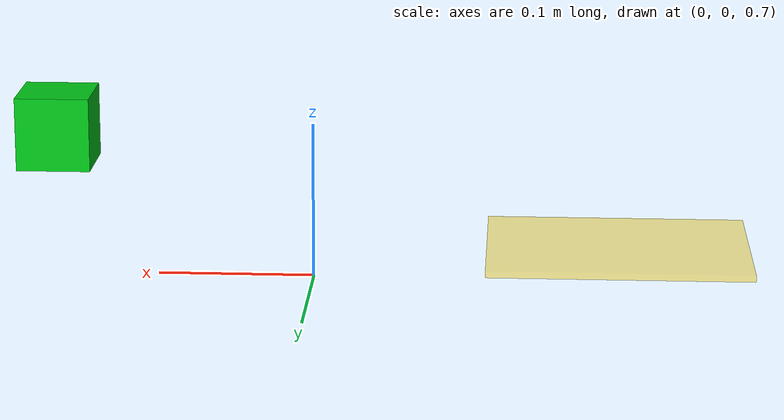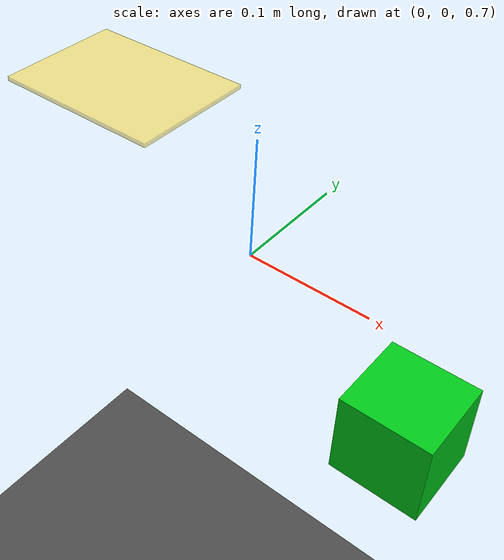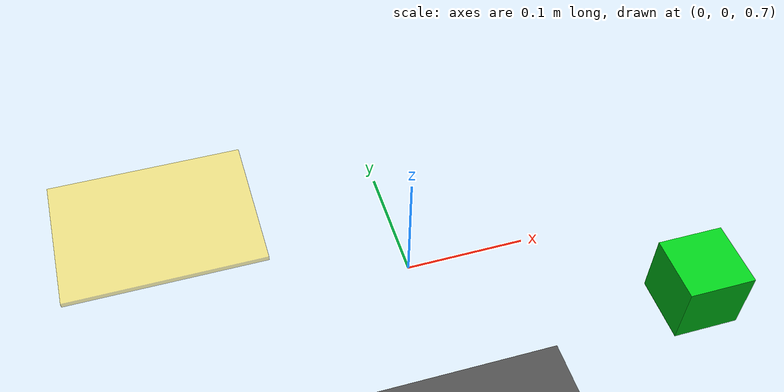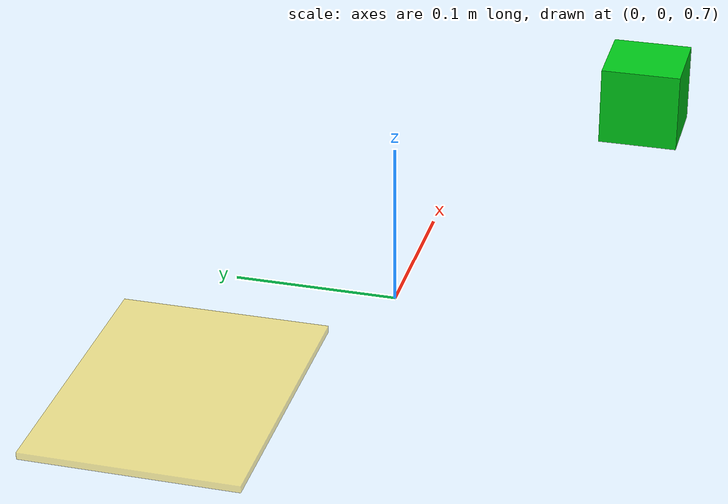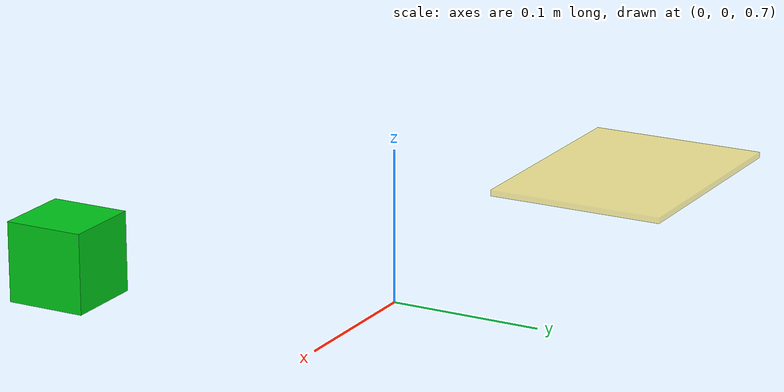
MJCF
<mujoco model="move_green_block_to_yellow_zone">
  <compiler angle="radian" coordinate="local"/>
  <option gravity="0.0 0.0 -9.81" timestep="0.01"/>
  <visual><headlight ambient="0.45 0.45 0.45" diffuse="0.8 0.8 0.8" specular="0.15 0.15 0.15"/></visual>
  <asset>
  </asset>
  <custom>
    <text name="agenticsim_task_contract" data="{&quot;action&quot;:{&quot;arm_policy&quot;:{&quot;negative_arm&quot;:&quot;left&quot;,&quot;nonnegative_arm&quot;:&quot;right&quot;,&quot;object&quot;:&quot;green_block&quot;,&quot;save_as&quot;:&quot;main_arm&quot;,&quot;type&quot;:&quot;by_object_x&quot;},&quot;interface&quot;:&quot;robotwin_primitive_plan&quot;,&quot;operations&quot;:[&quot;grasp&quot;,&quot;move_by&quot;,&quot;place&quot;]},&quot;observation&quot;:{&quot;cameras&quot;:[&quot;head_camera&quot;,&quot;left_camera&quot;,&quot;right_camera&quot;],&quot;state&quot;:[&quot;object_pose&quot;,&quot;robot_joint_position&quot;,&quot;contact&quot;]},&quot;reset&quot;:{&quot;constraints&quot;:[&quot;no_initial_object_collision&quot;,&quot;target_reachable_by_robot&quot;,&quot;success_condition_sim_state_observable&quot;,&quot;task_objects_stable&quot;,&quot;protected_regions_defined&quot;,&quot;all_placeholders_bound&quot;],&quot;object_poses&quot;:&quot;from_env_spec&quot;,&quot;randomization&quot;:{&quot;cluttered_table&quot;:false,&quot;lighting&quot;:false,&quot;object_pose&quot;:true,&quot;table_height&quot;:false,&quot;texture&quot;:false}},&quot;success&quot;:[{&quot;comment&quot;:&quot;The green block center should end inside yellow_zone.&quot;,&quot;object&quot;:&quot;green_block&quot;,&quot;region&quot;:&quot;yellow_zone&quot;,&quot;tolerance_m&quot;:0.04,&quot;type&quot;:&quot;in_region&quot;},{&quot;comment&quot;:&quot;The robot should release the object.&quot;,&quot;required&quot;:true,&quot;type&quot;:&quot;grippers_open&quot;}],&quot;termination&quot;:[{&quot;steps&quot;:1000,&quot;type&quot;:&quot;timeout&quot;}]}"/>
    <text name="agenticsim_object_ids" data="[&quot;green_block&quot;]"/>
    <text name="agenticsim_sensors" data="[{&quot;id&quot;:&quot;head_camera&quot;,&quot;required&quot;:true,&quot;type&quot;:&quot;rgb&quot;},{&quot;id&quot;:&quot;left_camera&quot;,&quot;required&quot;:false,&quot;type&quot;:&quot;rgb&quot;},{&quot;id&quot;:&quot;right_camera&quot;,&quot;required&quot;:false,&quot;type&quot;:&quot;rgb&quot;}]"/>
  </custom>
  <contact>
  </contact>
  <worldbody>
    <geom name="ground" type="plane" size="3 3 0.1" rgba="0.3 0.3 0.3 1"/>
    <light name="key_light" pos="0 -1 2" dir="0 0 -1" diffuse="0.8 0.8 0.8"/>
    <camera name="head_camera" pos="0 -1 1" quat="1 0 0 0" fovy="60"/>
    <camera name="left_camera" pos="0 -1 1" quat="1 0 0 0" fovy="60"/>
    <camera name="right_camera" pos="0 -1 1" quat="1 0 0 0" fovy="60"/>
    <body name="green_block" pos="0.183333333 -0.11953125 0.766" quat="1 0 0 0"><freejoint name="green_block_free"/><geom name="green_block_geom" type="box" size="0.025 0.025 0.025" rgba="0 0.8 0.1 1"/></body>
    <body name="yellow_zone" pos="-0.19166666666666665 0.06953124999999999 0.742"><geom type="box" size="0.08 0.06 0.002" rgba="1.0 0.82 0.0 0.45" contype="0" conaffinity="0"/></body>
  </worldbody>
</mujoco>
